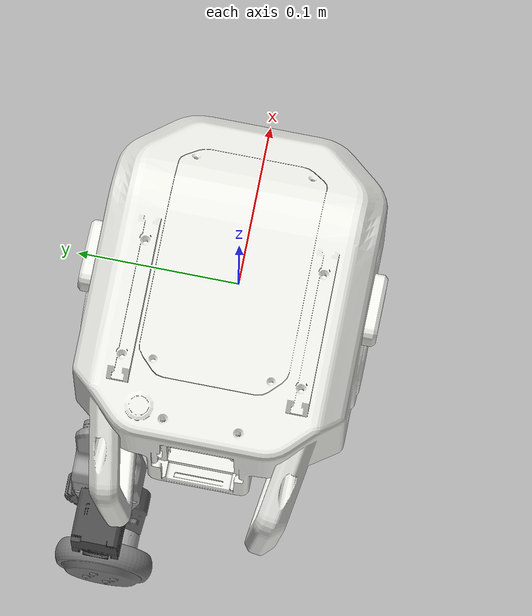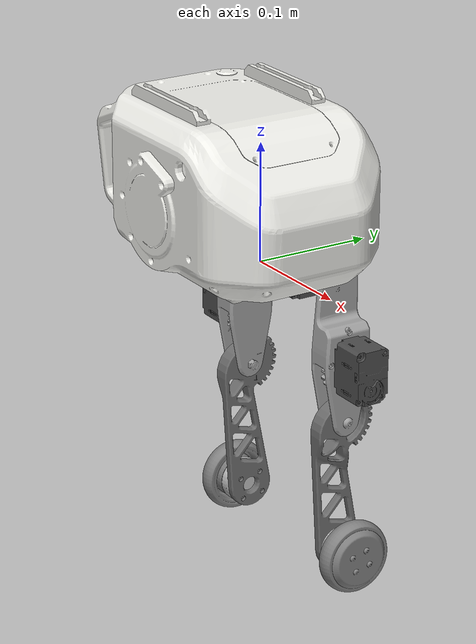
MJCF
<mujoco model="bipedal10.2">
  <compiler angle="radian" meshdir="meshes"/>
  <size njmax="500" nconmax="100" />
  <asset>
    <mesh name="base_link" file="base_link.STL"/>
    <mesh name="FixMotor1" file="FixMotor1.STL"/>
    <mesh name="FixMotor3" file="FixMotor3.STL"/>
    <mesh name="R1" file="R1.STL"/>
    <mesh name="FixMotor4" file="FixMotor4.STL"/>
    <mesh name="R2" file="R2.STL"/>
    <mesh name="R3" file="R3.STL"/>
    <mesh name="R4" file="R4.STL"/>
    <mesh name="L1" file="L1.STL"/>
    <mesh name="FixMotor2" file="FixMotor2.STL"/>
    <mesh name="L2" file="L2.STL"/>
    <mesh name="L3" file="L3.STL"/>
    <mesh name="L4" file="L4.STL"/>
  </asset>

  <worldbody>

    <body name="base_link">
      <inertial pos="-0.0430455 0.0467319 -0.0223114" quat="0.49877 0.501535 -0.497211 0.502467" mass="0.9138" diaginertia="0.000918252 0.000530322 0.000437595"/>
      <joint name="floating_base" type="free" limited="false" actuatorfrclimited="false"/>
      <geom type="mesh" contype="0" conaffinity="0" group="1" density="0" rgba="0.92549 0.92549 0.90588 1" mesh="base_link"/>
      <geom type="mesh" rgba="0.92549 0.92549 0.90588 1" mesh="base_link"/>
      <geom pos="-0.092323 0.070189 -0.020612" quat="1 0 0 0" type="mesh" contype="0" conaffinity="0" group="1" density="0" rgba="0.29804 0.29804 0.29804 1" mesh="FixMotor1"/>
      <geom pos="-0.092323 0.070189 -0.020612" quat="1 0 0 0" type="mesh" rgba="0.29804 0.29804 0.29804 1" mesh="FixMotor1"/>
      <geom pos="0.0060771 0.070189 -0.020612" quat="0.707105 0 0.707108 0" type="mesh" contype="0" conaffinity="0" group="1" density="0" rgba="0.29804 0.29804 0.29804 1" mesh="FixMotor3"/>
      <geom pos="0.0060771 0.070189 -0.020612" quat="0.707105 0 0.707108 0" type="mesh" rgba="0.29804 0.29804 0.29804 1" mesh="FixMotor3"/>

      <site name="imu" pos="0 0 0"/>

      <body name="R1" pos="0.024227 0.059189 -0.020612" quat="0.707105 0 0 0.707108">
        <inertial pos="5.04629e-06 -0.0200582 -0.0616403" quat="0.99416 -0.107403 0.00950229 -0.00442741" mass="0.0988" diaginertia="9.67921e-05 8.19704e-05 3.52418e-05"/>
        <joint name="R1" pos="0 0 0" axis="0 1 0"/>
        <geom type="mesh" contype="0" conaffinity="0" group="1" density="0" rgba="0.62745 0.62745 0.62745 1" mesh="R1"/>
        <geom type="mesh" rgba="0.62745 0.62745 0.62745 1" mesh="R1"/>
        <geom pos="-0.00028834 -0.024 -0.0905" quat="0.707105 -0.707107 0.00112645 0.00112646" type="mesh" contype="0" conaffinity="0" group="1" density="0" rgba="0.29804 0.29804 0.29804 1" mesh="FixMotor4"/>
        <geom pos="-0.00028834 -0.024 -0.0905" quat="0.707105 -0.707107 0.00112645 0.00112646" type="mesh" rgba="0.29804 0.29804 0.29804 1" mesh="FixMotor4"/>
        <body name="R2" pos="-0.00038233 -0.0108 -0.12">
          <inertial pos="0.00180316 0.0014693 -0.094557" quat="0.725466 -0.0175874 0.0102784 0.687956" mass="0.0817" diaginertia="0.000211507 0.00020507 9.25785e-06"/>
          <joint name="R2" pos="0 0 0" axis="0 -1 0"/>
          <geom type="mesh" contype="0" conaffinity="0" group="1" density="0" rgba="0.43137 0.43137 0.43137 1" mesh="R2"/>
          <geom type="mesh" rgba="0.43137 0.43137 0.43137 1" mesh="R2"/>
          <geom pos="0.0024572 -0.0235 -0.11997" quat="0.350331 0.61422 0.614222 0.350333" type="mesh" contype="0" conaffinity="0" group="1" density="0" rgba="0.75294 0.75294 0.75294 1" mesh="R3"/>
          <geom pos="0.0024572 -0.0235 -0.11997" quat="0.350331 0.61422 0.614222 0.350333" type="mesh" rgba="0.75294 0.75294 0.75294 1" mesh="R3"/>
          <body name="R4" pos="0.0024572 -0.0235 -0.11997" quat="1 -2.0924e-06 3.6732e-06 9.01663e-07">
            <inertial pos="-5.703e-12 0.0065924 2.0318e-12" quat="0.707107 0 0 0.707107" mass="0.0545" diaginertia="2.4575e-05 1.3633e-05 1.3633e-05"/>
            <joint name="R4" pos="0 0 0" axis="0 1 0"/>
            <geom type="mesh" contype="0" conaffinity="0" group="1" density="0" rgba="0.50196 0.50196 0.50196 1" mesh="R4"/>
            <geom type="mesh" rgba="0.50196 0.50196 0.50196 1" mesh="R4"/>
          </body>
        </body>
      </body>
      <body name="L1" pos="-0.11057 0.059189 -0.020612" quat="0.707105 0 0 0.707108">
        <inertial pos="-0.000122144 0.020055 -0.0616402" quat="0.994142 0.10746 0.0103632 0.00516376" mass="0.0988" diaginertia="9.68031e-05 8.19712e-05 3.52522e-05"/>
        <joint name="L1" pos="0 0 0" axis="0 1 0"/>
        <geom type="mesh" contype="0" conaffinity="0" group="1" density="0" rgba="0.62745 0.62745 0.62745 1" mesh="L1"/>
        <geom type="mesh" rgba="0.62745 0.62745 0.62745 1" mesh="L1"/>
        <geom pos="-0.00044938 0.024 -0.090499" quat="0.00175297 0.00175816 -0.707106 0.707103" type="mesh" contype="0" conaffinity="0" group="1" density="0" rgba="0.29804 0.29804 0.29804 1" mesh="FixMotor2"/>
        <geom pos="-0.00044938 0.024 -0.090499" quat="0.00175297 0.00175816 -0.707106 0.707103" type="mesh" rgba="0.29804 0.29804 0.29804 1" mesh="FixMotor2"/>
        <body name="L2" pos="-0.00059586 0.0108 -0.12">
          <inertial pos="0.00202464 -0.0014693 -0.0946588" quat="0.690032 0.009635 -0.0182278 0.723485" mass="0.0817" diaginertia="0.00021192 0.000205525 9.21289e-06"/>
          <joint name="L2" pos="0 0 0" axis="0 -1 0"/>
          <geom type="mesh" contype="0" conaffinity="0" group="1" density="0" rgba="0.43137 0.43137 0.43137 1" mesh="L2"/>
          <geom type="mesh" rgba="0.43137 0.43137 0.43137 1" mesh="L2"/>
          <geom pos="0.0031907 0.0235 -0.11996" quat="0.142764 0.692544 -0.692546 -0.142764" type="mesh" contype="0" conaffinity="0" group="1" density="0" rgba="0.75294 0.75294 0.75294 1" mesh="L3"/>
          <geom pos="0.0031907 0.0235 -0.11996" quat="0.142764 0.692544 -0.692546 -0.142764" type="mesh" rgba="0.75294 0.75294 0.75294 1" mesh="L3"/>
          <body name="L4" pos="0.0031907 0.0235 -0.11996" quat="-1 -4.39955e-06 -6.32679e-06 1.4975e-07">
            <inertial pos="3.8845e-12 -0.0065924 -5.6056e-12" quat="0.707107 0 0 0.707107" mass="0.0545" diaginertia="2.4575e-05 1.3633e-05 1.3633e-05"/>
            <joint name="L4" pos="0 0 0" axis="0 1 0"/>
            <geom type="mesh" contype="0" conaffinity="0" group="1" density="0" rgba="0.50196 0.50196 0.50196 1" mesh="L4"/>
            <geom type="mesh" rgba="0.50196 0.50196 0.50196 1" mesh="L4"/>
          </body>
        </body>
      </body>
    </body>
  </worldbody>
  <actuator>
      <position name = "right_1" ctrlrange="-4 4" joint = "joint_right_1" kp = "15" kv = "0.01"/>
      <position name = "left_1" ctrlrange="-4 4" joint = "joint_left_1" kp = "15" kv = "0.01"/>
      <position name = "right_2" ctrlrange="-4 4" joint = "joint_right_2" kp = "2" kv = "0.1"/>
      <position name = "left_2" ctrlrange="-4 4" joint = "joint_left_2" kp = "2" kv = "0.1"/>
      <motor name = "left_3"  joint = "joint_left_3"  ctrlrange="-3 3"/>
      <motor name = "right_3" joint = "joint_right_3" ctrlrange="-3 3"/>

  </actuator>

  <sensor>
      <jointpos name="right1_pos" joint="joint_right_1" />
      <jointpos name="left1_pos"  joint="joint_left_1" />
      <jointpos name="right2_pos" joint="joint_right_2" />
      <jointpos name="left2_pos"  joint="joint_left_2" />
      <jointpos name="right3_pos" joint="joint_right_3" />
      <jointpos name="left3_pos"  joint="joint_left_3" />

      <jointvel name="right1_vel" joint="joint_right_1" />
      <jointvel name="left1_vel"  joint="joint_left_1" />
      <jointvel name="right2_vel" joint="joint_right_2" />
      <jointvel name="left2_vel"  joint="joint_left_2" />
      <jointvel name="right3_vel" joint="joint_right_3" />
      <jointvel name="left3_vel"  joint="joint_left_3" />

      <jointactuatorfrc name="right1_torque" joint="joint_right_1" />
      <jointactuatorfrc name="left1_torque"  joint="joint_left_1" />
      <jointactuatorfrc name="right2_torque" joint="joint_right_2" />
      <jointactuatorfrc name="left2_torque"  joint="joint_left_2" />
      <jointactuatorfrc name="right3_torque" joint="joint_right_3" />
      <jointactuatorfrc name="left3_torque"  joint="joint_left_3" />

      <framequat name="imu_quat" objtype="site" objname="imu" />
      <gyro name="imu_gyro" site="imu" />
      <accelerometer name="imu_acc" site="imu" />

      <framepos name="frame_pos" objtype="site" objname="imu" />
      <framelinvel name="frame_vel" objtype="site" objname="imu" />
  </sensor>
</mujoco>
